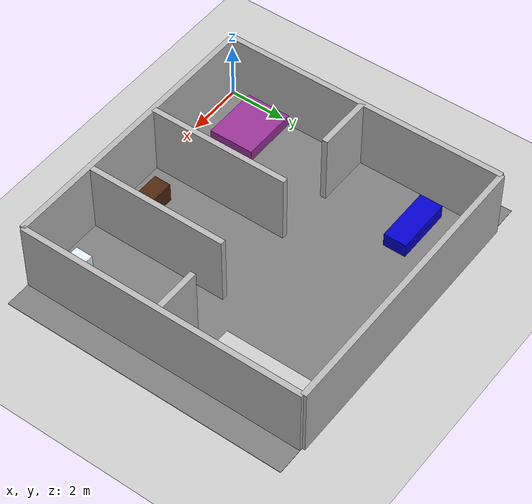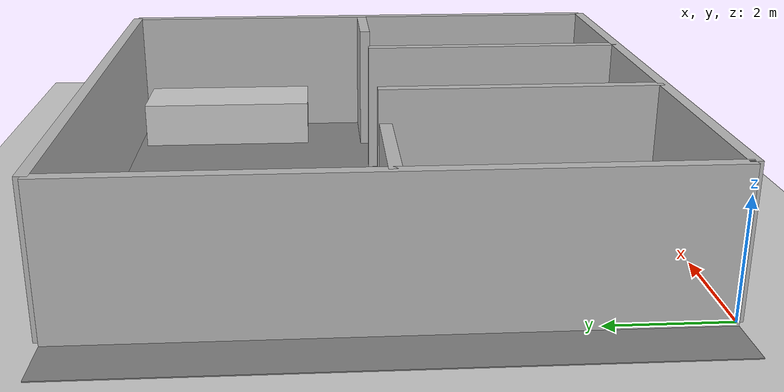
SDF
<?xml version="1.0" ?>
<sdf version="1.6">
  <world name="house_2plus1_world">
    <include>
      <uri>model://sun</uri>
    </include>
    <include>
      <uri>model://ground_plane</uri>
    </include>

    <!-- Zemin (Floor) -->
    <model name="floor">
      <static>true</static>
      <pose>5 5 -0.05 0 0 0</pose>
      <link name="link">
        <collision name="collision"><geometry><box><size>12 10 0.1</size></box></geometry></collision>
        <visual name="visual"><geometry><box><size>12 10 0.1</size></box></geometry>
          <material><ambient>0.3 0.3 0.3 1</ambient><diffuse>0.5 0.5 0.5 1</diffuse></material>
        </visual>
      </link>
    </model>

    <!-- Duvarlar -->
    <model name="wall_north"><static>true</static><pose>5 10 1.25 0 0 0</pose><link name="link"><collision name="collision"><geometry><box><size>10 0.2 2.5</size></box></geometry></collision><visual name="visual"><geometry><box><size>10 0.2 2.5</size></box></geometry></visual></link></model>
    <model name="wall_south"><static>true</static><pose>5 0 1.25 0 0 0</pose><link name="link"><collision name="collision"><geometry><box><size>10 0.2 2.5</size></box></geometry></collision><visual name="visual"><geometry><box><size>10 0.2 2.5</size></box></geometry></visual></link></model>
    <model name="wall_west"><static>true</static><pose>0 5 1.25 0 0 0</pose><link name="link"><collision name="collision"><geometry><box><size>0.2 10 2.5</size></box></geometry></collision><visual name="visual"><geometry><box><size>0.2 10 2.5</size></box></geometry></visual></link></model>
    <model name="wall_east"><static>true</static><pose>10 5 1.25 0 0 0</pose><link name="link"><collision name="collision"><geometry><box><size>0.2 10 2.5</size></box></geometry></collision><visual name="visual"><geometry><box><size>0.2 10 2.5</size></box></geometry></visual></link></model>
    <model name="inner_wall_1"><static>true</static><pose>4 2.5 1.25 0 0 0</pose><link name="link"><collision name="collision"><geometry><box><size>0.2 5 2.5</size></box></geometry></collision><visual name="visual"><geometry><box><size>0.2 5 2.5</size></box></geometry></visual></link></model>
    <model name="inner_wall_2"><static>true</static><pose>1 5 1.25 0 0 0</pose><link name="link"><collision name="collision"><geometry><box><size>2 0.2 2.5</size></box></geometry></collision><visual name="visual"><geometry><box><size>2 0.2 2.5</size></box></geometry></visual></link></model>
    <model name="inner_wall_3"><static>true</static><pose>9.15 5 1.25 0 0 0</pose><link name="link"><collision name="collision"><geometry><box><size>1.5 0.2 2.5</size></box></geometry></collision><visual name="visual"><geometry><box><size>1.5 0.2 2.5</size></box></geometry></visual></link></model>
    <model name="inner_wall_4"><static>true</static><pose>7 2.5 1.25 0 0 0</pose><link name="link"><collision name="collision"><geometry><box><size>0.2 5 2.5</size></box></geometry></collision><visual name="visual"><geometry><box><size>0.2 5 2.5</size></box></geometry></visual></link></model>

    <!-- Eşyalar -->
    <model name="sofa"><static>true</static><pose>1.5 8 0.25 0 0 0</pose><link name="l"><collision name="c"><geometry><box><size>2.0 0.8 0.5</size></box></geometry></collision><visual name="v"><geometry><box><size>2.0 0.8 0.5</size></box></geometry><material><ambient>0 0 0.5 1</ambient><diffuse>0 0 0.8 1</diffuse></material></visual></link></model>
    <model name="kitchen_counter"><static>true</static><pose>9.2 8 0.45 0 0 0</pose><link name="l"><collision name="c"><geometry><box><size>1.4 3.5 0.9</size></box></geometry></collision><visual name="v"><geometry><box><size>1.4 3.5 0.9</size></box></geometry><material><ambient>0.7 0.7 0.7 1</ambient><diffuse>0.8 0.8 0.8 1</diffuse></material></visual></link></model>
    <model name="bed"><static>true</static><pose>1.1 1.5 0.2 0 0 0</pose><link name="l"><collision name="c"><geometry><box><size>2.0 1.6 0.4</size></box></geometry></collision><visual name="v"><geometry><box><size>2.0 1.6 0.4</size></box></geometry><material><ambient>0.5 0 0.5 1</ambient><diffuse>0.6 0.2 0.6 1</diffuse></material></visual></link></model>
    <model name="desk"><static>true</static><pose>5.5 1 0.35 0 0 0</pose><link name="l"><collision name="c"><geometry><box><size>1.2 0.6 0.7</size></box></geometry></collision><visual name="v"><geometry><box><size>1.2 0.6 0.7</size></box></geometry><material><ambient>0.2 0.1 0 1</ambient><diffuse>0.3 0.15 0.05 1</diffuse></material></visual></link></model>
    <model name="sink_block"><static>true</static><pose>9 1 0.4 0 0 0</pose><link name="l"><collision name="c"><geometry><box><size>0.8 0.6 0.8</size></box></geometry></collision><visual name="v"><geometry><box><size>0.8 0.6 0.8</size></box></geometry><material><ambient>0.8 0.9 1 1</ambient><diffuse>0.9 0.95 1 1</diffuse></material></visual></link></model>

  </world>
</sdf>
